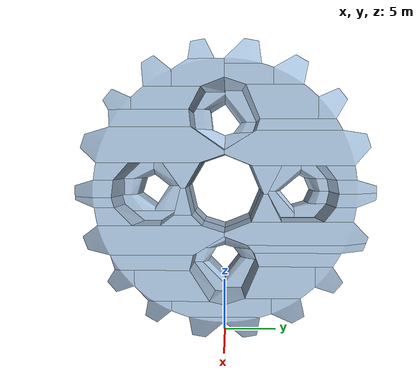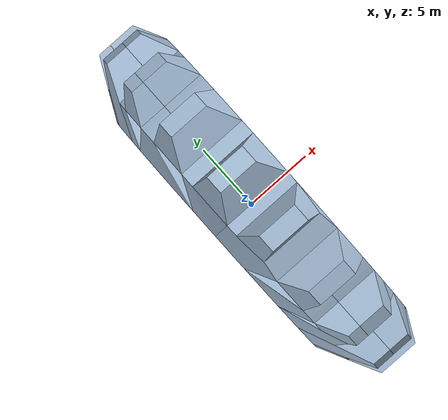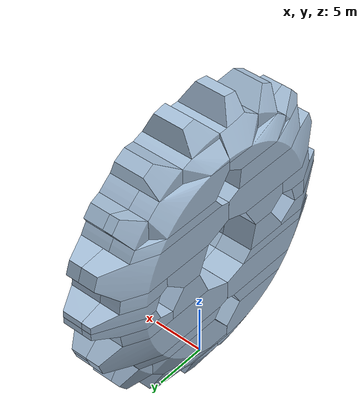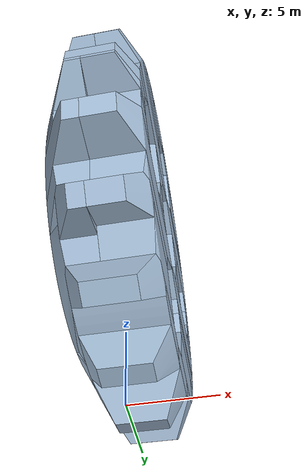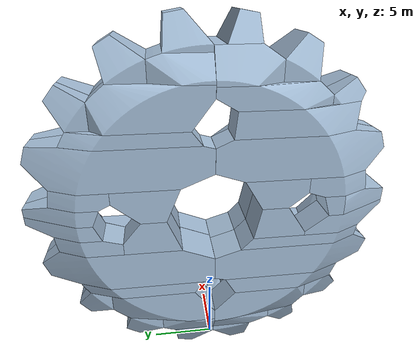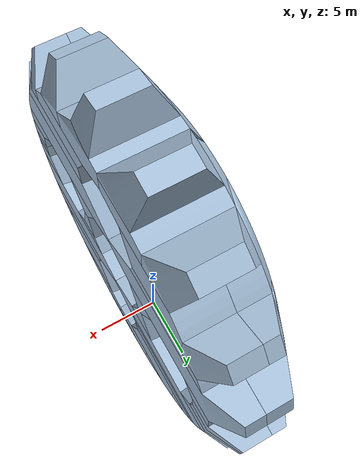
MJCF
<?xml version="1.0" encoding="UTF-8"?>
<mujoco model="gripper_gear">
  <compiler angle="radian" meshdir="."/>
  <option gravity="0 0 -9.81"/>
  <asset>
    <mesh name="gripper_gear_part_000" file="Gripper Gear_parts/Gripper Gear_000.obj" inertia="convex"/>
    <mesh name="gripper_gear_part_001" file="Gripper Gear_parts/Gripper Gear_001.obj" inertia="convex"/>
    <mesh name="gripper_gear_part_002" file="Gripper Gear_parts/Gripper Gear_002.obj" inertia="convex"/>
    <mesh name="gripper_gear_part_003" file="Gripper Gear_parts/Gripper Gear_003.obj" inertia="convex"/>
    <mesh name="gripper_gear_part_004" file="Gripper Gear_parts/Gripper Gear_004.obj" inertia="convex"/>
    <mesh name="gripper_gear_part_005" file="Gripper Gear_parts/Gripper Gear_005.obj" inertia="convex"/>
    <mesh name="gripper_gear_part_006" file="Gripper Gear_parts/Gripper Gear_006.obj" inertia="convex"/>
    <mesh name="gripper_gear_part_007" file="Gripper Gear_parts/Gripper Gear_007.obj" inertia="convex"/>
    <mesh name="gripper_gear_part_008" file="Gripper Gear_parts/Gripper Gear_008.obj" inertia="convex"/>
    <mesh name="gripper_gear_part_009" file="Gripper Gear_parts/Gripper Gear_009.obj" inertia="convex"/>
    <mesh name="gripper_gear_part_010" file="Gripper Gear_parts/Gripper Gear_010.obj" inertia="convex"/>
    <mesh name="gripper_gear_part_011" file="Gripper Gear_parts/Gripper Gear_011.obj" inertia="convex"/>
    <mesh name="gripper_gear_part_012" file="Gripper Gear_parts/Gripper Gear_012.obj" inertia="convex"/>
    <mesh name="gripper_gear_part_013" file="Gripper Gear_parts/Gripper Gear_013.obj" inertia="convex"/>
    <mesh name="gripper_gear_part_014" file="Gripper Gear_parts/Gripper Gear_014.obj" inertia="convex"/>
    <mesh name="gripper_gear_part_015" file="Gripper Gear_parts/Gripper Gear_015.obj" inertia="convex"/>
    <mesh name="gripper_gear_part_016" file="Gripper Gear_parts/Gripper Gear_016.obj" inertia="convex"/>
    <mesh name="gripper_gear_part_017" file="Gripper Gear_parts/Gripper Gear_017.obj" inertia="convex"/>
    <mesh name="gripper_gear_part_018" file="Gripper Gear_parts/Gripper Gear_018.obj" inertia="convex"/>
    <mesh name="gripper_gear_part_019" file="Gripper Gear_parts/Gripper Gear_019.obj" inertia="convex"/>
    <mesh name="gripper_gear_part_020" file="Gripper Gear_parts/Gripper Gear_020.obj" inertia="convex"/>
    <mesh name="gripper_gear_part_021" file="Gripper Gear_parts/Gripper Gear_021.obj" inertia="convex"/>
    <mesh name="gripper_gear_part_022" file="Gripper Gear_parts/Gripper Gear_022.obj" inertia="convex"/>
    <mesh name="gripper_gear_part_023" file="Gripper Gear_parts/Gripper Gear_023.obj" inertia="convex"/>
    <mesh name="gripper_gear_part_024" file="Gripper Gear_parts/Gripper Gear_024.obj" inertia="convex"/>
    <mesh name="gripper_gear_part_025" file="Gripper Gear_parts/Gripper Gear_025.obj" inertia="convex"/>
    <mesh name="gripper_gear_part_026" file="Gripper Gear_parts/Gripper Gear_026.obj" inertia="convex"/>
    <mesh name="gripper_gear_part_027" file="Gripper Gear_parts/Gripper Gear_027.obj" inertia="convex"/>
    <mesh name="gripper_gear_part_028" file="Gripper Gear_parts/Gripper Gear_028.obj" inertia="convex"/>
    <mesh name="gripper_gear_part_029" file="Gripper Gear_parts/Gripper Gear_029.obj" inertia="convex"/>
    <mesh name="gripper_gear_part_030" file="Gripper Gear_parts/Gripper Gear_030.obj" inertia="convex"/>
    <mesh name="gripper_gear_part_031" file="Gripper Gear_parts/Gripper Gear_031.obj" inertia="convex"/>
    <mesh name="gripper_gear_part_032" file="Gripper Gear_parts/Gripper Gear_032.obj" inertia="convex"/>
    <mesh name="gripper_gear_part_033" file="Gripper Gear_parts/Gripper Gear_033.obj" inertia="convex"/>
    <mesh name="gripper_gear_part_034" file="Gripper Gear_parts/Gripper Gear_034.obj" inertia="convex"/>
    <mesh name="gripper_gear_part_035" file="Gripper Gear_parts/Gripper Gear_035.obj" inertia="convex"/>
    <mesh name="gripper_gear_part_036" file="Gripper Gear_parts/Gripper Gear_036.obj" inertia="convex"/>
    <mesh name="gripper_gear_part_037" file="Gripper Gear_parts/Gripper Gear_037.obj" inertia="convex"/>
    <mesh name="gripper_gear_part_038" file="Gripper Gear_parts/Gripper Gear_038.obj" inertia="convex"/>
    <mesh name="gripper_gear_part_039" file="Gripper Gear_parts/Gripper Gear_039.obj" inertia="convex"/>
    <mesh name="gripper_gear_part_040" file="Gripper Gear_parts/Gripper Gear_040.obj" inertia="convex"/>
    <mesh name="gripper_gear_part_041" file="Gripper Gear_parts/Gripper Gear_041.obj" inertia="convex"/>
    <mesh name="gripper_gear_part_042" file="Gripper Gear_parts/Gripper Gear_042.obj" inertia="convex"/>
    <mesh name="gripper_gear_part_043" file="Gripper Gear_parts/Gripper Gear_043.obj" inertia="convex"/>
    <mesh name="gripper_gear_part_044" file="Gripper Gear_parts/Gripper Gear_044.obj" inertia="convex"/>
    <mesh name="gripper_gear_part_045" file="Gripper Gear_parts/Gripper Gear_045.obj" inertia="convex"/>
    <mesh name="gripper_gear_part_046" file="Gripper Gear_parts/Gripper Gear_046.obj" inertia="convex"/>
    <mesh name="gripper_gear_part_047" file="Gripper Gear_parts/Gripper Gear_047.obj" inertia="convex"/>
    <mesh name="gripper_gear_part_048" file="Gripper Gear_parts/Gripper Gear_048.obj" inertia="convex"/>
    <mesh name="gripper_gear_part_049" file="Gripper Gear_parts/Gripper Gear_049.obj" inertia="convex"/>
    <mesh name="gripper_gear_part_050" file="Gripper Gear_parts/Gripper Gear_050.obj" inertia="convex"/>
    <mesh name="gripper_gear_part_051" file="Gripper Gear_parts/Gripper Gear_051.obj" inertia="convex"/>
    <mesh name="gripper_gear_part_052" file="Gripper Gear_parts/Gripper Gear_052.obj" inertia="convex"/>
    <mesh name="gripper_gear_part_053" file="Gripper Gear_parts/Gripper Gear_053.obj" inertia="convex"/>
    <mesh name="gripper_gear_part_054" file="Gripper Gear_parts/Gripper Gear_054.obj" inertia="convex"/>
    <mesh name="gripper_gear_part_055" file="Gripper Gear_parts/Gripper Gear_055.obj" inertia="convex"/>
    <mesh name="gripper_gear_part_056" file="Gripper Gear_parts/Gripper Gear_056.obj" inertia="convex"/>
    <mesh name="gripper_gear_part_057" file="Gripper Gear_parts/Gripper Gear_057.obj" inertia="convex"/>
    <mesh name="gripper_gear_part_058" file="Gripper Gear_parts/Gripper Gear_058.obj" inertia="convex"/>
    <mesh name="gripper_gear_part_059" file="Gripper Gear_parts/Gripper Gear_059.obj" inertia="convex"/>
    <mesh name="gripper_gear_part_060" file="Gripper Gear_parts/Gripper Gear_060.obj" inertia="convex"/>
    <mesh name="gripper_gear_part_061" file="Gripper Gear_parts/Gripper Gear_061.obj" inertia="convex"/>
    <mesh name="gripper_gear_part_062" file="Gripper Gear_parts/Gripper Gear_062.obj" inertia="convex"/>
    <mesh name="gripper_gear_part_063" file="Gripper Gear_parts/Gripper Gear_063.obj" inertia="convex"/>
    <mesh name="gripper_gear_part_064" file="Gripper Gear_parts/Gripper Gear_064.obj" inertia="convex"/>
    <mesh name="gripper_gear_part_065" file="Gripper Gear_parts/Gripper Gear_065.obj" inertia="convex"/>
    <mesh name="gripper_gear_part_066" file="Gripper Gear_parts/Gripper Gear_066.obj" inertia="convex"/>
    <mesh name="gripper_gear_part_067" file="Gripper Gear_parts/Gripper Gear_067.obj" inertia="convex"/>
    <mesh name="gripper_gear_part_068" file="Gripper Gear_parts/Gripper Gear_068.obj" inertia="convex"/>
    <mesh name="gripper_gear_part_069" file="Gripper Gear_parts/Gripper Gear_069.obj" inertia="convex"/>
  </asset>
  <worldbody>
    <body name="gripper_gear">
      <!-- Remove this freejoint when attaching the body to an existing model. -->
      <freejoint/>
      <geom name="gripper_gear_part_000_geom" type="mesh" mesh="gripper_gear_part_000" contype="1" conaffinity="1" rgba="0.65 0.75 0.85 1"/>
      <geom name="gripper_gear_part_001_geom" type="mesh" mesh="gripper_gear_part_001" contype="1" conaffinity="1" rgba="0.65 0.75 0.85 1"/>
      <geom name="gripper_gear_part_002_geom" type="mesh" mesh="gripper_gear_part_002" contype="1" conaffinity="1" rgba="0.65 0.75 0.85 1"/>
      <geom name="gripper_gear_part_003_geom" type="mesh" mesh="gripper_gear_part_003" contype="1" conaffinity="1" rgba="0.65 0.75 0.85 1"/>
      <geom name="gripper_gear_part_004_geom" type="mesh" mesh="gripper_gear_part_004" contype="1" conaffinity="1" rgba="0.65 0.75 0.85 1"/>
      <geom name="gripper_gear_part_005_geom" type="mesh" mesh="gripper_gear_part_005" contype="1" conaffinity="1" rgba="0.65 0.75 0.85 1"/>
      <geom name="gripper_gear_part_006_geom" type="mesh" mesh="gripper_gear_part_006" contype="1" conaffinity="1" rgba="0.65 0.75 0.85 1"/>
      <geom name="gripper_gear_part_007_geom" type="mesh" mesh="gripper_gear_part_007" contype="1" conaffinity="1" rgba="0.65 0.75 0.85 1"/>
      <geom name="gripper_gear_part_008_geom" type="mesh" mesh="gripper_gear_part_008" contype="1" conaffinity="1" rgba="0.65 0.75 0.85 1"/>
      <geom name="gripper_gear_part_009_geom" type="mesh" mesh="gripper_gear_part_009" contype="1" conaffinity="1" rgba="0.65 0.75 0.85 1"/>
      <geom name="gripper_gear_part_010_geom" type="mesh" mesh="gripper_gear_part_010" contype="1" conaffinity="1" rgba="0.65 0.75 0.85 1"/>
      <geom name="gripper_gear_part_011_geom" type="mesh" mesh="gripper_gear_part_011" contype="1" conaffinity="1" rgba="0.65 0.75 0.85 1"/>
      <geom name="gripper_gear_part_012_geom" type="mesh" mesh="gripper_gear_part_012" contype="1" conaffinity="1" rgba="0.65 0.75 0.85 1"/>
      <geom name="gripper_gear_part_013_geom" type="mesh" mesh="gripper_gear_part_013" contype="1" conaffinity="1" rgba="0.65 0.75 0.85 1"/>
      <geom name="gripper_gear_part_014_geom" type="mesh" mesh="gripper_gear_part_014" contype="1" conaffinity="1" rgba="0.65 0.75 0.85 1"/>
      <geom name="gripper_gear_part_015_geom" type="mesh" mesh="gripper_gear_part_015" contype="1" conaffinity="1" rgba="0.65 0.75 0.85 1"/>
      <geom name="gripper_gear_part_016_geom" type="mesh" mesh="gripper_gear_part_016" contype="1" conaffinity="1" rgba="0.65 0.75 0.85 1"/>
      <geom name="gripper_gear_part_017_geom" type="mesh" mesh="gripper_gear_part_017" contype="1" conaffinity="1" rgba="0.65 0.75 0.85 1"/>
      <geom name="gripper_gear_part_018_geom" type="mesh" mesh="gripper_gear_part_018" contype="1" conaffinity="1" rgba="0.65 0.75 0.85 1"/>
      <geom name="gripper_gear_part_019_geom" type="mesh" mesh="gripper_gear_part_019" contype="1" conaffinity="1" rgba="0.65 0.75 0.85 1"/>
      <geom name="gripper_gear_part_020_geom" type="mesh" mesh="gripper_gear_part_020" contype="1" conaffinity="1" rgba="0.65 0.75 0.85 1"/>
      <geom name="gripper_gear_part_021_geom" type="mesh" mesh="gripper_gear_part_021" contype="1" conaffinity="1" rgba="0.65 0.75 0.85 1"/>
      <geom name="gripper_gear_part_022_geom" type="mesh" mesh="gripper_gear_part_022" contype="1" conaffinity="1" rgba="0.65 0.75 0.85 1"/>
      <geom name="gripper_gear_part_023_geom" type="mesh" mesh="gripper_gear_part_023" contype="1" conaffinity="1" rgba="0.65 0.75 0.85 1"/>
      <geom name="gripper_gear_part_024_geom" type="mesh" mesh="gripper_gear_part_024" contype="1" conaffinity="1" rgba="0.65 0.75 0.85 1"/>
      <geom name="gripper_gear_part_025_geom" type="mesh" mesh="gripper_gear_part_025" contype="1" conaffinity="1" rgba="0.65 0.75 0.85 1"/>
      <geom name="gripper_gear_part_026_geom" type="mesh" mesh="gripper_gear_part_026" contype="1" conaffinity="1" rgba="0.65 0.75 0.85 1"/>
      <geom name="gripper_gear_part_027_geom" type="mesh" mesh="gripper_gear_part_027" contype="1" conaffinity="1" rgba="0.65 0.75 0.85 1"/>
      <geom name="gripper_gear_part_028_geom" type="mesh" mesh="gripper_gear_part_028" contype="1" conaffinity="1" rgba="0.65 0.75 0.85 1"/>
      <geom name="gripper_gear_part_029_geom" type="mesh" mesh="gripper_gear_part_029" contype="1" conaffinity="1" rgba="0.65 0.75 0.85 1"/>
      <geom name="gripper_gear_part_030_geom" type="mesh" mesh="gripper_gear_part_030" contype="1" conaffinity="1" rgba="0.65 0.75 0.85 1"/>
      <geom name="gripper_gear_part_031_geom" type="mesh" mesh="gripper_gear_part_031" contype="1" conaffinity="1" rgba="0.65 0.75 0.85 1"/>
      <geom name="gripper_gear_part_032_geom" type="mesh" mesh="gripper_gear_part_032" contype="1" conaffinity="1" rgba="0.65 0.75 0.85 1"/>
      <geom name="gripper_gear_part_033_geom" type="mesh" mesh="gripper_gear_part_033" contype="1" conaffinity="1" rgba="0.65 0.75 0.85 1"/>
      <geom name="gripper_gear_part_034_geom" type="mesh" mesh="gripper_gear_part_034" contype="1" conaffinity="1" rgba="0.65 0.75 0.85 1"/>
      <geom name="gripper_gear_part_035_geom" type="mesh" mesh="gripper_gear_part_035" contype="1" conaffinity="1" rgba="0.65 0.75 0.85 1"/>
      <geom name="gripper_gear_part_036_geom" type="mesh" mesh="gripper_gear_part_036" contype="1" conaffinity="1" rgba="0.65 0.75 0.85 1"/>
      <geom name="gripper_gear_part_037_geom" type="mesh" mesh="gripper_gear_part_037" contype="1" conaffinity="1" rgba="0.65 0.75 0.85 1"/>
      <geom name="gripper_gear_part_038_geom" type="mesh" mesh="gripper_gear_part_038" contype="1" conaffinity="1" rgba="0.65 0.75 0.85 1"/>
      <geom name="gripper_gear_part_039_geom" type="mesh" mesh="gripper_gear_part_039" contype="1" conaffinity="1" rgba="0.65 0.75 0.85 1"/>
      <geom name="gripper_gear_part_040_geom" type="mesh" mesh="gripper_gear_part_040" contype="1" conaffinity="1" rgba="0.65 0.75 0.85 1"/>
      <geom name="gripper_gear_part_041_geom" type="mesh" mesh="gripper_gear_part_041" contype="1" conaffinity="1" rgba="0.65 0.75 0.85 1"/>
      <geom name="gripper_gear_part_042_geom" type="mesh" mesh="gripper_gear_part_042" contype="1" conaffinity="1" rgba="0.65 0.75 0.85 1"/>
      <geom name="gripper_gear_part_043_geom" type="mesh" mesh="gripper_gear_part_043" contype="1" conaffinity="1" rgba="0.65 0.75 0.85 1"/>
      <geom name="gripper_gear_part_044_geom" type="mesh" mesh="gripper_gear_part_044" contype="1" conaffinity="1" rgba="0.65 0.75 0.85 1"/>
      <geom name="gripper_gear_part_045_geom" type="mesh" mesh="gripper_gear_part_045" contype="1" conaffinity="1" rgba="0.65 0.75 0.85 1"/>
      <geom name="gripper_gear_part_046_geom" type="mesh" mesh="gripper_gear_part_046" contype="1" conaffinity="1" rgba="0.65 0.75 0.85 1"/>
      <geom name="gripper_gear_part_047_geom" type="mesh" mesh="gripper_gear_part_047" contype="1" conaffinity="1" rgba="0.65 0.75 0.85 1"/>
      <geom name="gripper_gear_part_048_geom" type="mesh" mesh="gripper_gear_part_048" contype="1" conaffinity="1" rgba="0.65 0.75 0.85 1"/>
      <geom name="gripper_gear_part_049_geom" type="mesh" mesh="gripper_gear_part_049" contype="1" conaffinity="1" rgba="0.65 0.75 0.85 1"/>
      <geom name="gripper_gear_part_050_geom" type="mesh" mesh="gripper_gear_part_050" contype="1" conaffinity="1" rgba="0.65 0.75 0.85 1"/>
      <geom name="gripper_gear_part_051_geom" type="mesh" mesh="gripper_gear_part_051" contype="1" conaffinity="1" rgba="0.65 0.75 0.85 1"/>
      <geom name="gripper_gear_part_052_geom" type="mesh" mesh="gripper_gear_part_052" contype="1" conaffinity="1" rgba="0.65 0.75 0.85 1"/>
      <geom name="gripper_gear_part_053_geom" type="mesh" mesh="gripper_gear_part_053" contype="1" conaffinity="1" rgba="0.65 0.75 0.85 1"/>
      <geom name="gripper_gear_part_054_geom" type="mesh" mesh="gripper_gear_part_054" contype="1" conaffinity="1" rgba="0.65 0.75 0.85 1"/>
      <geom name="gripper_gear_part_055_geom" type="mesh" mesh="gripper_gear_part_055" contype="1" conaffinity="1" rgba="0.65 0.75 0.85 1"/>
      <geom name="gripper_gear_part_056_geom" type="mesh" mesh="gripper_gear_part_056" contype="1" conaffinity="1" rgba="0.65 0.75 0.85 1"/>
      <geom name="gripper_gear_part_057_geom" type="mesh" mesh="gripper_gear_part_057" contype="1" conaffinity="1" rgba="0.65 0.75 0.85 1"/>
      <geom name="gripper_gear_part_058_geom" type="mesh" mesh="gripper_gear_part_058" contype="1" conaffinity="1" rgba="0.65 0.75 0.85 1"/>
      <geom name="gripper_gear_part_059_geom" type="mesh" mesh="gripper_gear_part_059" contype="1" conaffinity="1" rgba="0.65 0.75 0.85 1"/>
      <geom name="gripper_gear_part_060_geom" type="mesh" mesh="gripper_gear_part_060" contype="1" conaffinity="1" rgba="0.65 0.75 0.85 1"/>
      <geom name="gripper_gear_part_061_geom" type="mesh" mesh="gripper_gear_part_061" contype="1" conaffinity="1" rgba="0.65 0.75 0.85 1"/>
      <geom name="gripper_gear_part_062_geom" type="mesh" mesh="gripper_gear_part_062" contype="1" conaffinity="1" rgba="0.65 0.75 0.85 1"/>
      <geom name="gripper_gear_part_063_geom" type="mesh" mesh="gripper_gear_part_063" contype="1" conaffinity="1" rgba="0.65 0.75 0.85 1"/>
      <geom name="gripper_gear_part_064_geom" type="mesh" mesh="gripper_gear_part_064" contype="1" conaffinity="1" rgba="0.65 0.75 0.85 1"/>
      <geom name="gripper_gear_part_065_geom" type="mesh" mesh="gripper_gear_part_065" contype="1" conaffinity="1" rgba="0.65 0.75 0.85 1"/>
      <geom name="gripper_gear_part_066_geom" type="mesh" mesh="gripper_gear_part_066" contype="1" conaffinity="1" rgba="0.65 0.75 0.85 1"/>
      <geom name="gripper_gear_part_067_geom" type="mesh" mesh="gripper_gear_part_067" contype="1" conaffinity="1" rgba="0.65 0.75 0.85 1"/>
      <geom name="gripper_gear_part_068_geom" type="mesh" mesh="gripper_gear_part_068" contype="1" conaffinity="1" rgba="0.65 0.75 0.85 1"/>
      <geom name="gripper_gear_part_069_geom" type="mesh" mesh="gripper_gear_part_069" contype="1" conaffinity="1" rgba="0.65 0.75 0.85 1"/>
    </body>
  </worldbody>
</mujoco>
